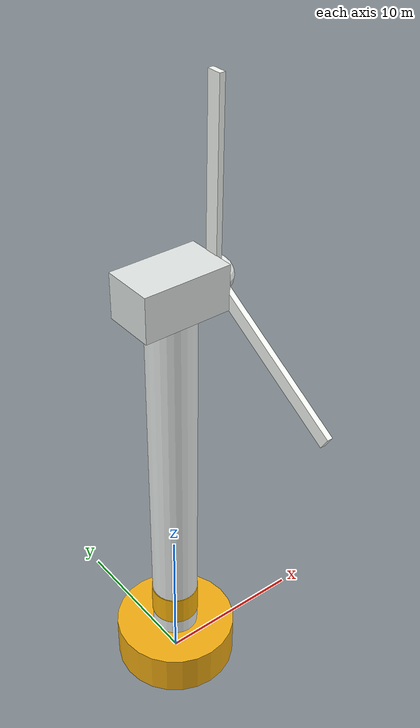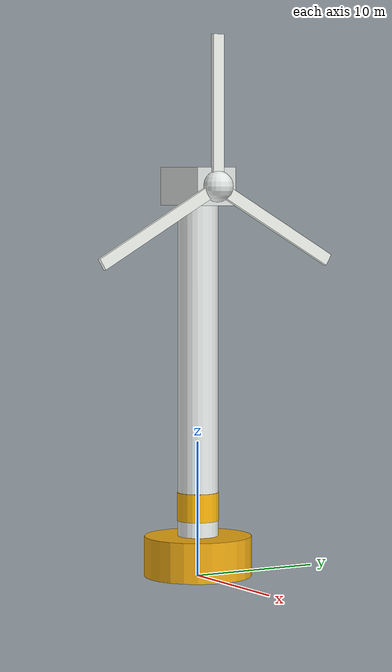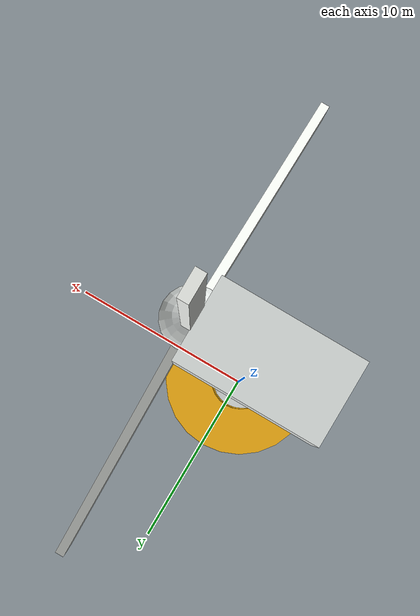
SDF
<?xml version="1.0"?>
<sdf version="1.10">
  <model name="offshore_wind_turbine">
    <link name="tower">
      <inertial><mass>80000</mass><inertia><ixx>8000000</ixx><iyy>8000000</iyy><izz>400000</izz></inertia></inertial>
      <collision name="foundation_collision"><pose>0 0 1.5 0 0 0</pose><geometry><cylinder><radius>4</radius><length>3</length></cylinder></geometry></collision>
      <collision name="tower_collision"><pose>0 0 15.5 0 0 0</pose><geometry><cylinder><radius>1.45</radius><length>26</length></cylinder></geometry></collision>
      <visual name="foundation"><pose>0 0 1.5 0 0 0</pose><geometry><cylinder><radius>4</radius><length>3</length></cylinder></geometry><material><ambient>0.72 0.5 0.04 1</ambient><diffuse>0.95 0.68 0.07 1</diffuse><specular>0.12 0.12 0.1 1</specular></material></visual>
      <visual name="tower_white"><pose>0 0 15.5 0 0 0</pose><geometry><cylinder><radius>1.5</radius><length>26</length></cylinder></geometry><material><ambient>0.75 0.77 0.76 1</ambient><diffuse>0.92 0.94 0.93 1</diffuse><specular>0.3 0.3 0.3 1</specular></material></visual>
      <visual name="navigation_band"><pose>0 0 5.2 0 0 0</pose><geometry><cylinder><radius>1.55</radius><length>2.1</length></cylinder></geometry><material><ambient>0.85 0.58 0.02 1</ambient><diffuse>1 0.72 0.04 1</diffuse></material></visual>
      <visual name="nacelle"><pose>0 0 29 0 0 0</pose><geometry><box><size>5.5 3.2 2.8</size></box></geometry><material><ambient>0.7 0.72 0.71 1</ambient><diffuse>0.88 0.9 0.89 1</diffuse><specular>0.3 0.3 0.3 1</specular></material></visual>
      <light name="aviation_light" type="point"><pose>0 0 31 0 0 0</pose><cast_shadows>false</cast_shadows><intensity>2</intensity><diffuse>1 0.03 0.02 1</diffuse><specular>1 0.08 0.04 1</specular><attenuation><range>70</range><constant>0.6</constant><linear>0.025</linear><quadratic>0.001</quadratic></attenuation></light>
    </link>
    <link name="rotor">
      <pose>2.9 0 29 0 0 0</pose>
      <inertial><mass>1800</mass><inertia><ixx>18000</ixx><iyy>36000</iyy><izz>36000</izz></inertia></inertial>
      <visual name="hub"><geometry><sphere><radius>1.15</radius></sphere></geometry><material><ambient>0.72 0.74 0.73 1</ambient><diffuse>0.9 0.92 0.91 1</diffuse></material></visual>
      <visual name="blade_1"><pose>0 0 5.8 0 0 0</pose><geometry><box><size>0.35 0.9 10.5</size></box></geometry><material><ambient>0.78 0.8 0.79 1</ambient><diffuse>0.96 0.97 0.95 1</diffuse><specular>0.25 0.25 0.25 1</specular></material></visual>
      <visual name="blade_2"><pose>0 -5.02 -2.9 2.0944 0 0</pose><geometry><box><size>0.35 0.9 10.5</size></box></geometry><material><ambient>0.78 0.8 0.79 1</ambient><diffuse>0.96 0.97 0.95 1</diffuse></material></visual>
      <visual name="blade_3"><pose>0 5.02 -2.9 4.18879 0 0</pose><geometry><box><size>0.35 0.9 10.5</size></box></geometry><material><ambient>0.78 0.8 0.79 1</ambient><diffuse>0.96 0.97 0.95 1</diffuse></material></visual>
    </link>
    <joint name="tower_world_joint" type="fixed"><parent>world</parent><child>tower</child></joint>
    <joint name="rotor_joint" type="revolute">
      <parent>tower</parent><child>rotor</child>
      <axis><xyz>1 0 0</xyz><limit><lower>-1.79769e+308</lower><upper>1.79769e+308</upper><velocity>2</velocity></limit></axis>
    </joint>
    <plugin filename="gz-sim-joint-controller-system" name="gz::sim::systems::JointController"><joint_name>rotor_joint</joint_name><initial_velocity>0.55</initial_velocity></plugin>
  </model>
</sdf>
